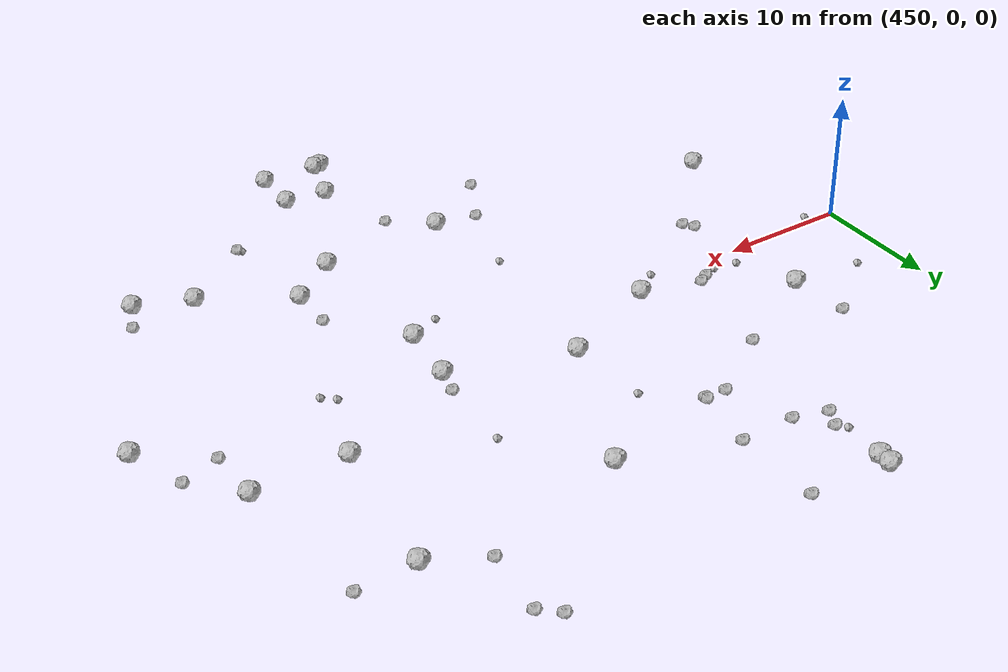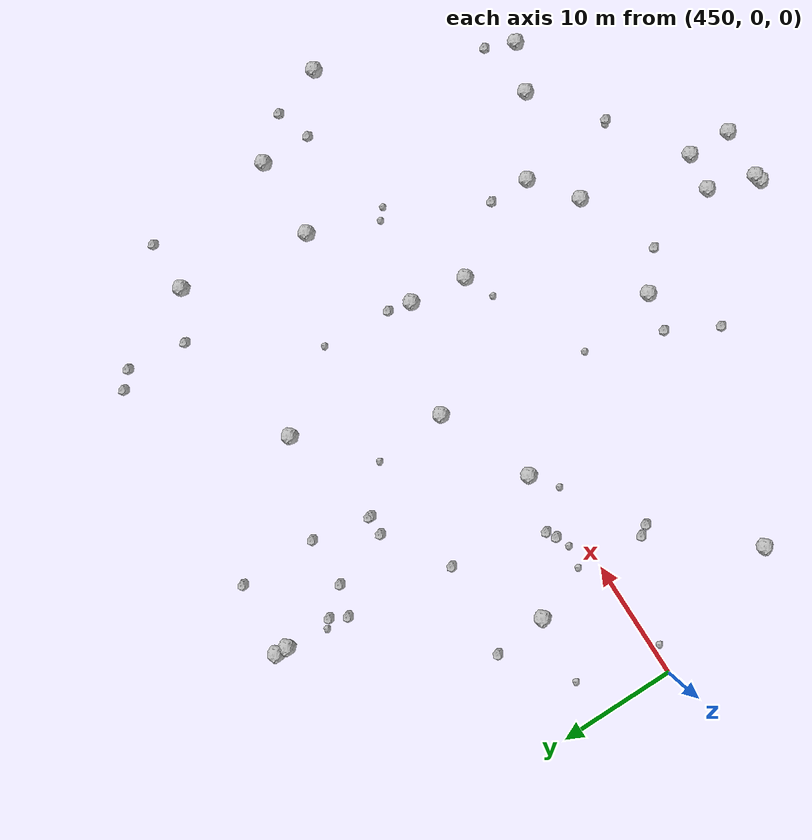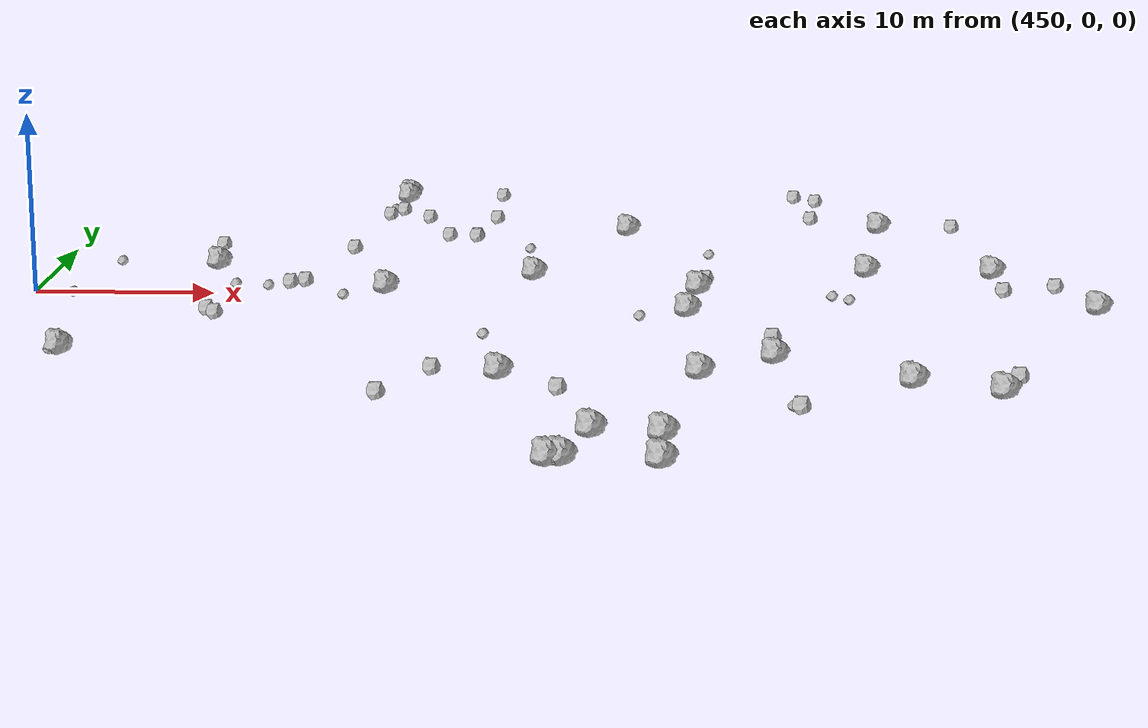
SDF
<sdf version="1.6">
 <world name="default">
  <include><uri>model://sun</uri></include>
  <model name="rock1_12_4">
   <include><uri>model://rock1</uri><pose>480.47625623472254 -29.010595312349487 0.5 0 0 0</pose></include>
  </model>
  <model name="rock1_12_5">
   <include><uri>model://rock1</uri><pose>484.9458416009442 -25.350539005689996 0.5 0 0 0</pose></include>
  </model>
  <model name="rock1_12_6">
   <include><uri>model://rock1</uri><pose>468.4280542387693 26.017659183725975 0.5 0 0 0</pose></include>
  </model>
  <model name="rock1_12_7">
   <include><uri>model://rock1</uri><pose>481.68003205688024 -24.92687270173203 0.5 0 0 0</pose></include>
  </model>
  <model name="rock1_12_8">
   <include><uri>model://rock1</uri><pose>482.8584586874665 15.860233213163696 0.5 0 0 0</pose></include>
  </model>
  <model name="rock1_12_9">
   <include><uri>model://rock1</uri><pose>469.5210963949259 0.9256459002949384 0.5 0 0 0</pose></include>
  </model>
  <model name="rock1_12_10">
   <include><uri>model://rock1</uri><pose>476.8856673394712 -15.774346990461371 0.5 0 0 0</pose></include>
  </model>
  <model name="rock1_12_11">
   <include><uri>model://rock1</uri><pose>501.23171950017286 -18.222408794249425 0.5 0 0 0</pose></include>
  </model>
  <model name="rock1_12_12">
   <include><uri>model://rock1</uri><pose>497.07535796153167 -16.545439373347044 0.5 0 0 0</pose></include>
  </model>
  <model name="rock1_12_13">
   <include><uri>model://rock1</uri><pose>490.5572594903541 -12.481621794013794 0.5 0 0 0</pose></include>
  </model>
  <model name="rock1_12_14">
   <include><uri>model://rock1</uri><pose>468.40397855622257 25.0065088425197 0.5 0 0 0</pose></include>
  </model>
  <model name="rock1_12_15">
   <include><uri>model://rock1</uri><pose>503.7963532724434 5.604431540507136 0.5 0 0 0</pose></include>
  </model>
  <model name="rock1_12_16">
   <include><uri>model://rock1</uri><pose>486.9370533761586 1.3966266836679644 0.5 0 0 0</pose></include>
  </model>
  <model name="rock1_12_17">
   <include><uri>model://rock1</uri><pose>477.635613955886 4.360509458630844 0.5 0 0 0</pose></include>
  </model>
  <model name="rock1_12_18">
   <include><uri>model://rock1</uri><pose>459.22359710370796 6.267435939755053 0.5 0 0 0</pose></include>
  </model>
  <model name="rock1_12_19">
   <include><uri>model://rock1</uri><pose>486.2846880824675 -3.541094296271048 0.5 0 0 0</pose></include>
  </model>
  <model name="rock1_12_20">
   <include><uri>model://rock1</uri><pose>508.4422579020161 -2.301152324720757 0.5 0 0 0</pose></include>
  </model>
  <model name="rock1_12_21">
   <include><uri>model://rock1</uri><pose>454.2963596071234 -12.189744389946547 0.5 0 0 0</pose></include>
  </model>
  <model name="rock1_12_22">
   <include><uri>model://rock1</uri><pose>486.74544720760514 -15.390570245418456 0.5 0 0 0</pose></include>
  </model>
  <model name="rock1_12_23">
   <include><uri>model://rock1</uri><pose>484.8646322982752 -29.190252079924043 0.5 0 0 0</pose></include>
  </model>
  <model name="rock1_12_24">
   <include><uri>model://rock1</uri><pose>496.65683401038166 5.7082624265762405 0.5 0 0 0</pose></include>
  </model>
  <model name="rock1_12_25">
   <include><uri>model://rock1</uri><pose>479.8814282000653 -29.117048598026926 0.5 0 0 0</pose></include>
  </model>
  <model name="rock1_12_26">
   <include><uri>model://rock1</uri><pose>498.31393745749574 17.041544556414742 0.5 0 0 0</pose></include>
  </model>
  <model name="rock2_12_0">
   <include><uri>model://rock2</uri><pose>490.57262579279336 -8.940707502172543 0.3 0 0 0</pose></include>
  </model>
  <model name="rock2_12_1">
   <include><uri>model://rock2</uri><pose>491.36959350538825 -21.022332734780104 0.3 0 0 0</pose></include>
  </model>
  <model name="rock2_12_2">
   <include><uri>model://rock2</uri><pose>473.65663405585605 13.687661933260266 0.3 0 0 0</pose></include>
  </model>
  <model name="rock2_12_3">
   <include><uri>model://rock2</uri><pose>470.3279189393196 18.767382332000324 0.3 0 0 0</pose></include>
  </model>
  <model name="rock2_12_4">
   <include><uri>model://rock2</uri><pose>502.77793301778263 17.134217213852104 0.3 0 0 0</pose></include>
  </model>
  <model name="rock2_12_5">
   <include><uri>model://rock2</uri><pose>474.5817419778108 18.785136787720973 0.3 0 0 0</pose></include>
  </model>
  <model name="rock2_12_6">
   <include><uri>model://rock2</uri><pose>464.8271805698949 2.228324681743139 0.3 0 0 0</pose></include>
  </model>
  <model name="rock2_12_7">
   <include><uri>model://rock2</uri><pose>473.66355713669833 13.900048956050135 0.3 0 0 0</pose></include>
  </model>
  <model name="rock2_12_8">
   <include><uri>model://rock2</uri><pose>473.5479667371443 -15.180002157269337 0.3 0 0 0</pose></include>
  </model>
  <model name="rock2_12_9">
   <include><uri>model://rock2</uri><pose>494.212414380741 19.176559971117477 0.3 0 0 0</pose></include>
  </model>
  <model name="rock2_12_10">
   <include><uri>model://rock2</uri><pose>460.9472633626902 -5.008816150552288 0.3 0 0 0</pose></include>
  </model>
  <model name="rock2_12_11">
   <include><uri>model://rock2</uri><pose>467.7665498761641 19.562220069619826 0.3 0 0 0</pose></include>
  </model>
  <model name="rock2_12_12">
   <include><uri>model://rock2</uri><pose>502.24409305859 -15.72295357446172 0.3 0 0 0</pose></include>
  </model>
  <model name="rock2_12_13">
   <include><uri>model://rock2</uri><pose>460.3817777049347 -4.202129621840438 0.3 0 0 0</pose></include>
  </model>
  <model name="rock2_12_14">
   <include><uri>model://rock2</uri><pose>466.6284987227271 10.278669199643893 0.3 0 0 0</pose></include>
  </model>
  <model name="rock2_12_15">
   <include><uri>model://rock2</uri><pose>479.8813478588246 -18.375736381294956 0.3 0 0 0</pose></include>
  </model>
  <model name="rock2_12_16">
   <include><uri>model://rock2</uri><pose>474.52914808932627 25.45430532262578 0.3 0 0 0</pose></include>
  </model>
  <model name="rock2_12_17">
   <include><uri>model://rock2</uri><pose>464.0428677681697 1.7720183709616109 0.3 0 0 0</pose></include>
  </model>
  <model name="rock2_12_18">
   <include><uri>model://rock2</uri><pose>503.78791026495196 1.223465820436374 0.3 0 0 0</pose></include>
  </model>
  <model name="rock2_12_19">
   <include><uri>model://rock2</uri><pose>494.8175072240082 24.319538545612737 0.3 0 0 0</pose></include>
  </model>
  <model name="rock2_12_20">
   <include><uri>model://rock2</uri><pose>493.51598042490855 25.52212891459841 0.3 0 0 0</pose></include>
  </model>
  <model name="rock2_12_21">
   <include><uri>model://rock2</uri><pose>506.7942994277707 2.228067489662763 0.3 0 0 0</pose></include>
  </model>
  <model name="rock2_12_22">
   <include><uri>model://rock2</uri><pose>458.6862266767016 10.889511578131696 0.3 0 0 0</pose></include>
  </model>
  <model name="rock2_12_23">
   <include><uri>model://rock2</uri><pose>471.9938683284099 13.825231964626433 0.3 0 0 0</pose></include>
  </model>
  <model name="rock2_12_24">
   <include><uri>model://rock2</uri><pose>487.35237371616324 3.4230757478903797 0.3 0 0 0</pose></include>
  </model>
  <model name="rock2_12_25">
   <include><uri>model://rock2</uri><pose>468.48838498389875 20.9553316389759 0.3 0 0 0</pose></include>
  </model>
  <model name="rock2_12_26">
   <include><uri>model://rock2</uri><pose>471.2828732882995 -19.42472101421499 0.3 0 0 0</pose></include>
  </model>
  <model name="rock3_12_0">
   <include><uri>model://rock3</uri><pose>460.9557122038419 1.575742846143612 0.2 0 0 0</pose></include>
  </model>
  <model name="rock3_12_1">
   <include><uri>model://rock3</uri><pose>487.6555904166483 9.478317824236036 0.2 0 0 0</pose></include>
  </model>
  <model name="rock3_12_2">
   <include><uri>model://rock3</uri><pose>453.7983508127503 -12.320104874203672 0.2 0 0 0</pose></include>
  </model>
  <model name="rock3_12_3">
   <include><uri>model://rock3</uri><pose>467.81992568210745 21.523252375717576 0.2 0 0 0</pose></include>
  </model>
  <model name="rock3_12_4">
   <include><uri>model://rock3</uri><pose>477.0537425523973 10.693936132502273 0.2 0 0 0</pose></include>
  </model>
  <model name="rock3_12_5">
   <include><uri>model://rock3</uri><pose>494.2409174365313 -0.16649940409313402 0.2 0 0 0</pose></include>
  </model>
  <model name="rock3_12_6">
   <include><uri>model://rock3</uri><pose>453.40738905443396 6.7181391529739045 0.2 0 0 0</pose></include>
  </model>
  <model name="rock3_12_7">
   <include><uri>model://rock3</uri><pose>483.68485767523646 -4.710718975369296 0.2 0 0 0</pose></include>
  </model>
  <model name="rock3_12_8">
   <include><uri>model://rock3</uri><pose>462.8454209849953 1.2565881963247207 0.2 0 0 0</pose></include>
  </model>
  <model name="rock3_12_9">
   <include><uri>model://rock3</uri><pose>491.04383016492955 -20.82212460115105 0.2 0 0 0</pose></include>
  </model>
  <model name="rock3_12_10">
   <include><uri>model://rock3</uri><pose>495.12002283647655 -0.9510097563982178 0.2 0 0 0</pose></include>
  </model>
  <model name="rock3_12_11">
   <include><uri>model://rock3</uri><pose>452.2502854166863 -0.623218425639628 0.2 0 0 0</pose></include>
  </model>
  <model name="rock3_12_12">
   <include><uri>model://rock3</uri><pose>467.289349593599 -0.7079458476132956 0.2 0 0 0</pose></include>
  </model>
  <model name="rock3_12_13">
   <include><uri>model://rock3</uri><pose>475.5909106684592 -8.642863332295715 0.2 0 0 0</pose></include>
  </model>
 </world>
</sdf>
